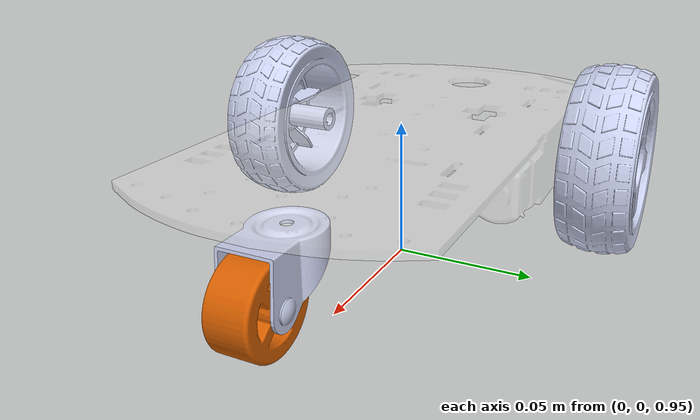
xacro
<?xml version="1.0"?>
<robot xmlns:xacro="http://www.ros.org/wiki/xacro" name="line_follower_robot">

  <!-- Parameters (optional) -->
  <xacro:property name="base_mesh" value="package://line_follower_robot/meshes/base_link.STL"/>
  <xacro:property name="left_wheel_mesh" value="package://line_follower_robot/meshes/left_wheel.STL"/>
  <xacro:property name="right_wheel_mesh" value="package://line_follower_robot/meshes/right_wheel.STL"/>
  <xacro:property name="castor_base_mesh" value="package://line_follower_robot/meshes/castor_base_link.STL"/>
  <xacro:property name="castor_wheel_mesh" value="package://line_follower_robot/meshes/castor_wheel.STL"/>

  <!-- world link -->
  <link name="world"/>
  <joint name="world_joint" type="fixed">
    <parent link="world"/>
    <child link="base_link"/>
    <origin xyz="0 0 1" rpy="0 0 0"/>
  </joint>

  <!-- Base link -->
  <link name="base_link">
    <inertial>
      <origin xyz="0.010085 -0.0000078763 -0.0066048" rpy="0 0 0"/>
      <mass value="0.12859"/>
      <inertia ixx="5.2146E-05" ixy="0" ixz="0"
               iyy="0.00017957" iyz="0" izz="0.00022799"/>
    </inertial>
    <visual>
      <origin xyz="0 0 0" rpy="0 0 0"/>
      <geometry>
        <mesh filename="${base_mesh}"/>
      </geometry>
      <material name="">
        <color rgba="1 1 1 0.3"/>
      </material>
    </visual>
    <collision>
      <origin xyz="0 0 0" rpy="0 0 0"/>
      <geometry>
        <mesh filename="${base_mesh}"/>
      </geometry>
    </collision>
  </link>

  <!-- Left wheel link -->
  <link name="left_wheel">
    <inertial>
      <origin xyz="0 0 -0.0073729" rpy="0 0 0"/>
      <mass value="0.021404"/>
      <inertia ixx="8.6283E-06" ixy="0" ixz="0" iyy="8.6269E-06" iyz="0" izz="1.4515E-05"/>
    </inertial>
    <visual>
      <origin xyz="0 0 0" rpy="0 0 0"/>
      <geometry>
        <mesh filename="${left_wheel_mesh}"/>
      </geometry>
      <material name="">
        <color rgba="0.79216 0.81961 0.93333 1"/>
      </material>
    </visual>
    <collision>
      <origin xyz="0 0 0" rpy="0 0 0"/>
      <geometry>
        <mesh filename="${left_wheel_mesh}"/>
      </geometry>
    </collision>
  </link>

  <joint name="left_wheel_joint" type="continuous">
    <origin xyz="-0.033259 0.07575 -0.01375" rpy="-1.5708 0 0"/>
    <parent link="base_link"/>
    <child link="left_wheel"/>
    <axis xyz="0 0 1"/>
  </joint>

  <!-- Right wheel link -->
  <link name="right_wheel">
    <inertial>
      <origin xyz="0 0 0.0073729" rpy="0 0 0"/>
      <mass value="0.021404"/>
      <inertia ixx="8.6283E-06" ixy="0" ixz="0" iyy="8.6269E-06" iyz="0" izz="1.4515E-05"/>
    </inertial>
    <visual>
      <origin xyz="0 0 0" rpy="0 0 0"/>
      <geometry>
        <mesh filename="${right_wheel_mesh}"/>
      </geometry>
      <material name="">
        <color rgba="0.79216 0.81961 0.93333 1"/>
      </material>
    </visual>
    <collision>
      <origin xyz="0 0 0" rpy="0 0 0"/>
      <geometry>
        <mesh filename="${right_wheel_mesh}"/>
      </geometry>
    </collision>
  </link>

  <joint name="right_wheel_joint" type="continuous">
    <origin xyz="-0.033259 -0.07575 -0.01375" rpy="-1.5708 0 0"/>
    <parent link="base_link"/>
    <child link="right_wheel"/>
    <axis xyz="0 0 1"/>
  </joint>

  <!-- Castor links -->
  <link name="castor_base_link">
    <visual>
      <geometry>
        <mesh filename="${castor_base_mesh}"/>
      </geometry>
      <material name="">
        <color rgba="0.79216 0.81961 0.93333 1"/>
      </material>
    </visual>
    <inertial>
      <origin xyz="0 0 0" rpy="0 0 0"/>
      <mass value="0.01"/>
      <inertia ixx="0.00001" ixy="0" ixz="0" iyy="0.00001" iyz="0" izz="0.00001"/>
    </inertial>
    <collision>
     <origin xyz="0 0 0" rpy="0 0 0"/>
      <geometry>
        <mesh filename="${castor_wheel_mesh}"/>
      </geometry>
    </collision>
  </link>

  <joint name="castor_joint" type="continuous">
    <origin xyz="0.072581 0 -0.0025" rpy="0 0 0"/>
    <parent link="base_link"/>
    <child link="castor_base_link"/>
    <axis xyz="0 0 1"/>
  </joint>

  <link name="castor_wheel">
    <visual>
      <geometry>
        <mesh filename="${castor_wheel_mesh}"/>
      </geometry>
    </visual>
    <inertial>
      <origin xyz="0 0 0" rpy="0 0 0"/>
      <mass value="0.01"/>
      <inertia ixx="0.00001" ixy="0" ixz="0" iyy="0.00001" iyz="0" izz="0.00001"/>
    </inertial>
    <collision>
     <origin xyz="0 0 0" rpy="0 0 0"/>
      <geometry>
        <mesh filename="${castor_wheel_mesh}"/>
      </geometry>
    </collision>
  </link>

  <joint name="castor_wheel_joint" type="continuous">
    <origin xyz="0.015014 0.00014167 -0.02296" rpy="-1.5708 0 0"/>
    <parent link="castor_base_link"/>
    <child link="castor_wheel"/>
    <axis xyz="0 0 1"/>
  </joint>

</robot>
